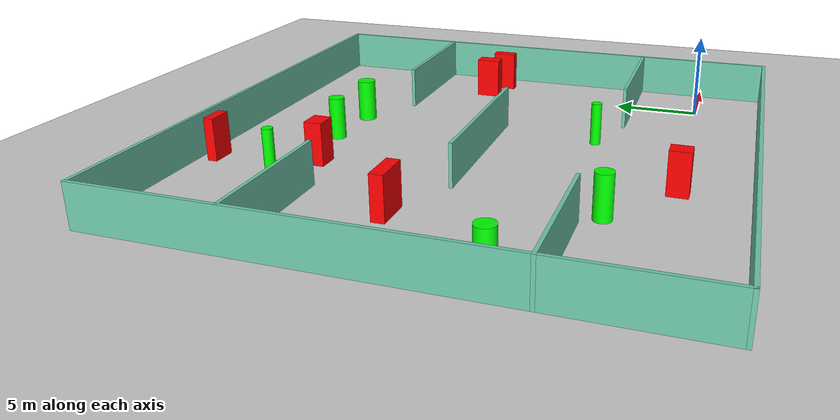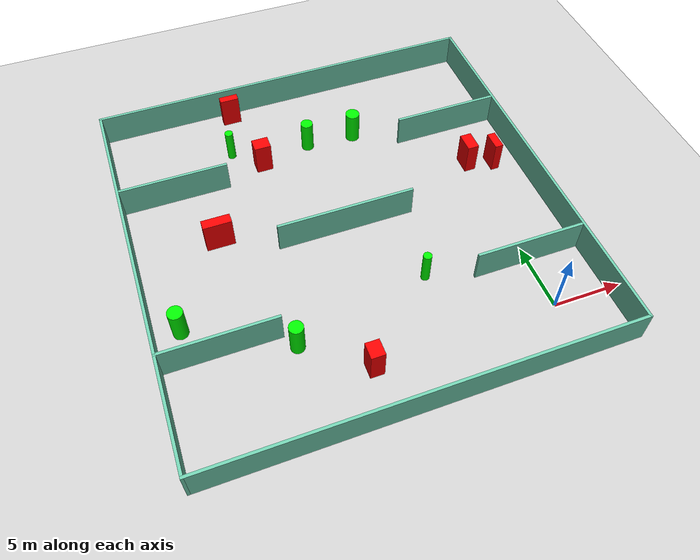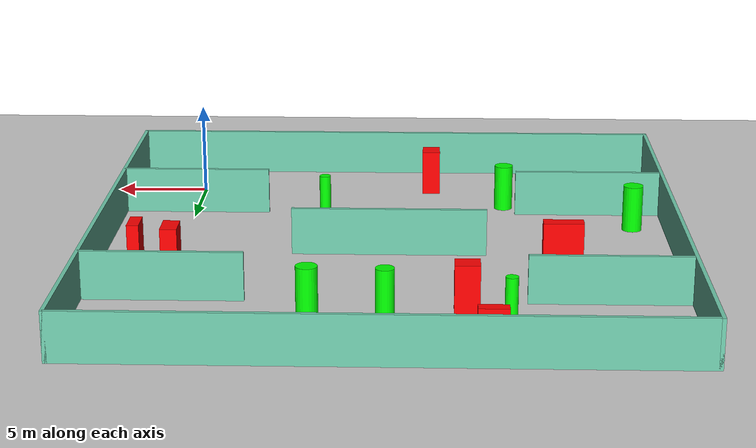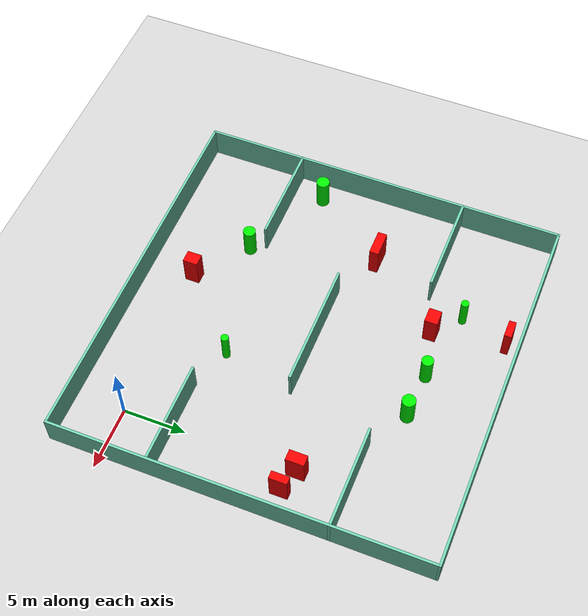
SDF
<sdf version="1.7">
 <world name="default">
  <light name="sun" type="directional">
   <pose>0 0 10 0 -0 0</pose>
   <diffuse>0.8 0.8 0.8 1</diffuse>
   <specular>0.2 0.2 0.2 1</specular>
   <attenuation>
    <range>1000</range>
    <constant>0.9</constant>
    <linear>0.01</linear>
    <quadratic>0.001</quadratic>
   </attenuation>
   <direction>-0.5 0.1 -0.9</direction>
   <spot><inner_angle>0</inner_angle><outer_angle>0</outer_angle><falloff>0</falloff></spot>
  </light>
  <model name="ground_plane">
   <static>1</static>
   <link name="link">
    <collision name="collision">
     <geometry><plane><normal>0 0 1</normal><size>100 100</size></plane></geometry>
     <surface>
      <contact><collide_bitmask>65535</collide_bitmask></contact>
      <friction><ode><mu>100</mu><mu2>50</mu2></ode></friction>
     </surface>
    </collision>
    <visual name="visual">
     <cast_shadows>0</cast_shadows>
     <geometry><plane><normal>0 0 1</normal><size>100 100</size></plane></geometry>
     <material>
      <script><uri>file://media/materials/scripts/gazebo.material</uri><name>Gazebo/Grey</name></script>
     </material>
    </visual>
   </link>
  </model>
  <gravity>0 0 -9.8</gravity>
  <magnetic_field>6e-06 2.3e-05 -4.2e-05</magnetic_field>
  <atmosphere type="adiabatic"/>
  <physics type="ode">
   <max_step_size>0.001</max_step_size>
   <real_time_factor>1</real_time_factor>
   <real_time_update_rate>1000</real_time_update_rate>
  </physics>
  <scene><ambient>0.4 0.4 0.4 1</ambient><background>0.7 0.7 0.7 1</background><shadows>1</shadows></scene>
  <spherical_coordinates>
   <surface_model>EARTH_WGS84</surface_model>
   <latitude_deg>0</latitude_deg>
   <longitude_deg>0</longitude_deg>
   <elevation>0</elevation>
   <heading_deg>0</heading_deg>
  </spherical_coordinates>
  <model name="my_base_walls">
   <link name="Wall_10">
    <collision name="Wall_10_Collision">
     <geometry><box><size>8.2 0.2 2.5</size></box></geometry>
     <pose>0 0 1.25 0 -0 0</pose>
    </collision>
    <visual name="Wall_10_Visual">
     <pose>0 0 1.25 0 -0 0</pose>
     <geometry><box><size>8.2 0.2 2.5</size></box></geometry>
     <material>
      <script><uri>file://media/materials/scripts/gazebo.material</uri><name>Gazebo/Grey</name></script>
      <ambient>0.435294 0.796078 0.67451 1</ambient>
     </material>
     <meta><layer>0</layer></meta>
    </visual>
    <pose>-11 -7 0 0 -0 0</pose>
   </link>
   <link name="Wall_12">
    <collision name="Wall_12_Collision">
     <geometry><box><size>8.2 0.2 2.5</size></box></geometry>
     <pose>0 0 1.25 0 -0 0</pose>
    </collision>
    <visual name="Wall_12_Visual">
     <pose>0 0 1.25 0 -0 0</pose>
     <geometry><box><size>8.2 0.2 2.5</size></box></geometry>
     <material>
      <script><uri>file://media/materials/scripts/gazebo.material</uri><name>Gazebo/Grey</name></script>
      <ambient>0.435294 0.796078 0.67451 1</ambient>
     </material>
     <meta><layer>0</layer></meta>
    </visual>
    <pose>-11 7 0 0 -0 0</pose>
   </link>
   <link name="Wall_14">
    <collision name="Wall_14_Collision">
     <geometry><box><size>8.2 0.2 2.5</size></box></geometry>
     <pose>0 0 1.25 0 -0 0</pose>
    </collision>
    <visual name="Wall_14_Visual">
     <pose>0 0 1.25 0 -0 0</pose>
     <geometry><box><size>8.2 0.2 2.5</size></box></geometry>
     <material>
      <script><uri>file://media/materials/scripts/gazebo.material</uri><name>Gazebo/Grey</name></script>
      <ambient>0.435294 0.796078 0.67451 1</ambient>
     </material>
     <meta><layer>0</layer></meta>
    </visual>
    <pose>11 7 0 0 -0 3.14159</pose>
   </link>
   <link name="Wall_16">
    <collision name="Wall_16_Collision">
     <geometry><box><size>10.2 0.2 2.5</size></box></geometry>
     <pose>0 0 1.25 0 -0 0</pose>
    </collision>
    <visual name="Wall_16_Visual">
     <pose>0 0 1.25 0 -0 0</pose>
     <geometry><box><size>10.2 0.2 2.5</size></box></geometry>
     <material>
      <script><uri>file://media/materials/scripts/gazebo.material</uri><name>Gazebo/Grey</name></script>
      <ambient>0.435294 0.796078 0.67451 1</ambient>
     </material>
     <meta><layer>0</layer></meta>
    </visual>
    <pose>0 0 0 0 -0 3.14159</pose>
   </link>
   <link name="Wall_2">
    <collision name="Wall_2_Collision">
     <geometry><box><size>30.2 0.2 2.5</size></box></geometry>
     <pose>0 0 1.25 0 -0 0</pose>
    </collision>
    <visual name="Wall_2_Visual">
     <pose>0 0 1.25 0 -0 0</pose>
     <geometry><box><size>30.2 0.2 2.5</size></box></geometry>
     <material>
      <script><uri>file://media/materials/scripts/gazebo.material</uri><name>Gazebo/Grey</name></script>
      <ambient>0.435294 0.796078 0.67451 1</ambient>
     </material>
     <meta><layer>0</layer></meta>
    </visual>
    <pose>0 -15 0 0 -0 3.14159</pose>
   </link>
   <link name="Wall_3">
    <collision name="Wall_3_Collision">
     <geometry><box><size>30.2 0.2 2.5</size></box></geometry>
     <pose>0 0 1.25 0 -0 0</pose>
    </collision>
    <visual name="Wall_3_Visual">
     <pose>0 0 1.25 0 -0 0</pose>
     <geometry><box><size>30.2 0.2 2.5</size></box></geometry>
     <material>
      <script><uri>file://media/materials/scripts/gazebo.material</uri><name>Gazebo/Grey</name></script>
      <ambient>0.435294 0.796078 0.67451 1</ambient>
     </material>
     <meta><layer>0</layer></meta>
    </visual>
    <pose>-15 0 0 0 -0 1.5708</pose>
   </link>
   <link name="Wall_4">
    <collision name="Wall_4_Collision">
     <geometry><box><size>30.2 0.2 2.5</size></box></geometry>
     <pose>0 0 1.25 0 -0 0</pose>
    </collision>
    <visual name="Wall_4_Visual">
     <pose>0 0 1.25 0 -0 0</pose>
     <geometry><box><size>30.2 0.2 2.5</size></box></geometry>
     <material>
      <script><uri>file://media/materials/scripts/gazebo.material</uri><name>Gazebo/Grey</name></script>
      <ambient>0.435294 0.796078 0.67451 1</ambient>
     </material>
     <meta><layer>0</layer></meta>
    </visual>
    <pose>0 15 0 0 -0 0</pose>
   </link>
   <link name="Wall_6">
    <collision name="Wall_6_Collision">
     <geometry><box><size>30.2 0.2 2.5</size></box></geometry>
     <pose>0 0 1.25 0 -0 0</pose>
    </collision>
    <visual name="Wall_6_Visual">
     <pose>0 0 1.25 0 -0 0</pose>
     <geometry><box><size>30.2 0.2 2.5</size></box></geometry>
     <material>
      <script><uri>file://media/materials/scripts/gazebo.material</uri><name>Gazebo/Grey</name></script>
      <ambient>0.435294 0.796078 0.67451 1</ambient>
     </material>
     <meta><layer>0</layer></meta>
    </visual>
    <pose>15 0 0 0 -0 1.5708</pose>
   </link>
   <link name="Wall_8">
    <collision name="Wall_8_Collision">
     <geometry><box><size>8.2 0.2 2.5</size></box></geometry>
     <pose>0 0 1.25 0 -0 0</pose>
    </collision>
    <visual name="Wall_8_Visual">
     <pose>0 0 1.25 0 -0 0</pose>
     <geometry><box><size>8.2 0.2 2.5</size></box></geometry>
     <material>
      <script><uri>file://media/materials/scripts/gazebo.material</uri><name>Gazebo/Grey</name></script>
      <ambient>0.435294 0.796078 0.67451 1</ambient>
     </material>
     <meta><layer>0</layer></meta>
    </visual>
    <pose>11 -7 0 0 -0 3.14159</pose>
   </link>
   <static>1</static>
   <pose>-11 11 0 0 -0 0</pose>
  </model>
  <model name="cylinder1">
   <static>1</static>
   <link name="link">
    <inertial>
     <mass>1</mass>
     <inertia><ixx>0.5</ixx><ixy>0</ixy><ixz>0</ixz><iyy>0.5</iyy><iyz>0</iyz><izz>1</izz></inertia>
    </inertial>
    <collision name="collision">
     <geometry><cylinder><radius>0.3130223602381498</radius><length>2.5</length></cylinder></geometry>
    </collision>
    <visual name="visual">
     <geometry><cylinder><radius>0.3130223602381498</radius><length>2.5</length></cylinder></geometry>
     <material>
      <ambient>0 1 0 1</ambient>
      <diffuse>0 1 0 1</diffuse>
      <specular>0.1 0.1 0.1 1</specular>
      <emissive>0 0 0 0</emissive>
     </material>
    </visual>
   </link>
   <pose>-16.970026659079544 21.07719384940127 1.25 0 0 0</pose>
  </model>
  <model name="cylinder2">
   <static>1</static>
   <link name="link">
    <inertial>
     <mass>1</mass>
     <inertia><ixx>0.5</ixx><ixy>0</ixy><ixz>0</ixz><iyy>0.5</iyy><iyz>0</iyz><izz>1</izz></inertia>
    </inertial>
    <collision name="collision">
     <geometry><cylinder><radius>0.5343369065440069</radius><length>2.5</length></cylinder></geometry>
    </collision>
    <visual name="visual">
     <geometry><cylinder><radius>0.5343369065440069</radius><length>2.5</length></cylinder></geometry>
     <material>
      <ambient>0 1 0 1</ambient>
      <diffuse>0 1 0 1</diffuse>
      <specular>0.1 0.1 0.1 1</specular>
      <emissive>0 0 0 0</emissive>
     </material>
    </visual>
   </link>
   <pose>-24.184651291442687 6.522121419927725 1.25 0 0 0</pose>
  </model>
  <model name="cylinder3">
   <static>1</static>
   <link name="link">
    <inertial>
     <mass>1</mass>
     <inertia><ixx>0.5</ixx><ixy>0</ixy><ixz>0</ixz><iyy>0.5</iyy><iyz>0</iyz><izz>1</izz></inertia>
    </inertial>
    <collision name="collision">
     <geometry><cylinder><radius>0.5390522603406103</radius><length>2.5</length></cylinder></geometry>
    </collision>
    <visual name="visual">
     <geometry><cylinder><radius>0.5390522603406103</radius><length>2.5</length></cylinder></geometry>
     <material>
      <ambient>0 1 0 1</ambient>
      <diffuse>0 1 0 1</diffuse>
      <specular>0.1 0.1 0.1 1</specular>
      <emissive>0 0 0 0</emissive>
     </material>
    </visual>
   </link>
   <pose>-7.283743331154886 19.866603331752053 1.25 0 0 0</pose>
  </model>
  <model name="cylinder4">
   <static>1</static>
   <link name="link">
    <inertial>
     <mass>1</mass>
     <inertia><ixx>0.5</ixx><ixy>0</ixy><ixz>0</ixz><iyy>0.5</iyy><iyz>0</iyz><izz>1</izz></inertia>
    </inertial>
    <collision name="collision">
     <geometry><cylinder><radius>0.46628028388489656</radius><length>2.5</length></cylinder></geometry>
    </collision>
    <visual name="visual">
     <geometry><cylinder><radius>0.46628028388489656</radius><length>2.5</length></cylinder></geometry>
     <material>
      <ambient>0 1 0 1</ambient>
      <diffuse>0 1 0 1</diffuse>
      <specular>0.1 0.1 0.1 1</specular>
      <emissive>0 0 0 0</emissive>
     </material>
    </visual>
   </link>
   <pose>-11.015591600460137 20.046872821524673 1.25 0 0 0</pose>
  </model>
  <model name="cylinder5">
   <static>1</static>
   <link name="link">
    <inertial>
     <mass>1</mass>
     <inertia><ixx>0.5</ixx><ixy>0</ixy><ixz>0</ixz><iyy>0.5</iyy><iyz>0</iyz><izz>1</izz></inertia>
    </inertial>
    <collision name="collision">
     <geometry><cylinder><radius>0.3073208591974457</radius><length>2.5</length></cylinder></geometry>
    </collision>
    <visual name="visual">
     <geometry><cylinder><radius>0.3073208591974457</radius><length>2.5</length></cylinder></geometry>
     <material>
      <ambient>0 1 0 1</ambient>
      <diffuse>0 1 0 1</diffuse>
      <specular>0.1 0.1 0.1 1</specular>
      <emissive>0 0 0 0</emissive>
     </material>
    </visual>
   </link>
   <pose>-7.328245059647198 5.136269788848615 1.25 0 0 0</pose>
  </model>
  <model name="cylinder6">
   <static>1</static>
   <link name="link">
    <inertial>
     <mass>1</mass>
     <inertia><ixx>0.5</ixx><ixy>0</ixy><ixz>0</ixz><iyy>0.5</iyy><iyz>0</iyz><izz>1</izz></inertia>
    </inertial>
    <collision name="collision">
     <geometry><cylinder><radius>0.5017112718146475</radius><length>2.5</length></cylinder></geometry>
    </collision>
    <visual name="visual">
     <geometry><cylinder><radius>0.5017112718146475</radius><length>2.5</length></cylinder></geometry>
     <material>
      <ambient>0 1 0 1</ambient>
      <diffuse>0 1 0 1</diffuse>
      <specular>0.1 0.1 0.1 1</specular>
      <emissive>0 0 0 0</emissive>
     </material>
    </visual>
   </link>
   <pose>-17.288629377738935 2.8822238146554717 1.25 0 0 0</pose>
  </model>
  <model name="box1">
   <static>1</static>
   <link name="link">
    <inertial>
     <mass>1</mass>
     <inertia><ixx>0.083</ixx><ixy>0</ixy><ixz>0</ixz><iyy>0.083</iyy><iyz>0</iyz><izz>0.083</izz></inertia>
    </inertial>
    <collision name="collision">
     <geometry><box><size>0.8640769844491196 1.4573377128731821 2.5</size></box></geometry>
    </collision>
    <visual name="visual">
     <geometry><box><size>0.8640769844491196 1.4573377128731821 2.5</size></box></geometry>
     <material>
      <ambient>1 0 0 1</ambient>
      <diffuse>1 0 0 1</diffuse>
      <specular>0.1 0.1 0.1 1</specular>
      <emissive>0 0 0 0</emissive>
     </material>
    </visual>
    <sensor name="my_contact" type="contact">
     <contact><collision>box_collision</collision><topic>__default_topic__</topic></contact>
    </sensor>
   </link>
   <pose>0.048324254198792715 13.97356170559474 1.25 0 0 0</pose>
  </model>
  <model name="box2">
   <static>1</static>
   <link name="link">
    <inertial>
     <mass>1</mass>
     <inertia><ixx>0.083</ixx><ixy>0</ixy><ixz>0</ixz><iyy>0.083</iyy><iyz>0</iyz><izz>0.083</izz></inertia>
    </inertial>
    <collision name="collision">
     <geometry><box><size>2.073682027086141 0.7450570254053499 2.5</size></box></geometry>
    </collision>
    <visual name="visual">
     <geometry><box><size>2.073682027086141 0.7450570254053499 2.5</size></box></geometry>
     <material>
      <ambient>1 0 0 1</ambient>
      <diffuse>1 0 0 1</diffuse>
      <specular>0.1 0.1 0.1 1</specular>
      <emissive>0 0 0 0</emissive>
     </material>
    </visual>
    <sensor name="my_contact" type="contact">
     <contact><collision>box_collision</collision><topic>__default_topic__</topic></contact>
    </sensor>
   </link>
   <pose>-19.949374948020555 12.882599914808436 1.25 0 0 0</pose>
  </model>
  <model name="box3">
   <static>1</static>
   <link name="link">
    <inertial>
     <mass>1</mass>
     <inertia><ixx>0.083</ixx><ixy>0</ixy><ixz>0</ixz><iyy>0.083</iyy><iyz>0</iyz><izz>0.083</izz></inertia>
    </inertial>
    <collision name="collision">
     <geometry><box><size>0.9878803999785846 1.1747586390375147 2.5</size></box></geometry>
    </collision>
    <visual name="visual">
     <geometry><box><size>0.9878803999785846 1.1747586390375147 2.5</size></box></geometry>
     <material>
      <ambient>1 0 0 1</ambient>
      <diffuse>1 0 0 1</diffuse>
      <specular>0.1 0.1 0.1 1</specular>
      <emissive>0 0 0 0</emissive>
     </material>
    </visual>
    <sensor name="my_contact" type="contact">
     <contact><collision>box_collision</collision><topic>__default_topic__</topic></contact>
    </sensor>
   </link>
   <pose>-13.201573560702112 -0.24823349359193436 1.25 0 0 0</pose>
  </model>
  <model name="box4">
   <static>1</static>
   <link name="link">
    <inertial>
     <mass>1</mass>
     <inertia><ixx>0.083</ixx><ixy>0</ixy><ixz>0</ixz><iyy>0.083</iyy><iyz>0</iyz><izz>0.083</izz></inertia>
    </inertial>
    <collision name="collision">
     <geometry><box><size>1.4351815687482836 0.5774420997465362 2.5</size></box></geometry>
    </collision>
    <visual name="visual">
     <geometry><box><size>1.4351815687482836 0.5774420997465362 2.5</size></box></geometry>
     <material>
      <ambient>1 0 0 1</ambient>
      <diffuse>1 0 0 1</diffuse>
      <specular>0.1 0.1 0.1 1</specular>
      <emissive>0 0 0 0</emissive>
     </material>
    </visual>
    <sensor name="my_contact" type="contact">
     <contact><collision>box_collision</collision><topic>__default_topic__</topic></contact>
    </sensor>
   </link>
   <pose>-15.98941749526934 24.96824354230227 1.25 0 0 0</pose>
  </model>
  <model name="box5">
   <static>1</static>
   <link name="link">
    <inertial>
     <mass>1</mass>
     <inertia><ixx>0.083</ixx><ixy>0</ixy><ixz>0</ixz><iyy>0.083</iyy><iyz>0</iyz><izz>0.083</izz></inertia>
    </inertial>
    <collision name="collision">
     <geometry><box><size>0.6247869716154255 1.4231288526998285 2.5</size></box></geometry>
    </collision>
    <visual name="visual">
     <geometry><box><size>0.6247869716154255 1.4231288526998285 2.5</size></box></geometry>
     <material>
      <ambient>1 0 0 1</ambient>
      <diffuse>1 0 0 1</diffuse>
      <specular>0.1 0.1 0.1 1</specular>
      <emissive>0 0 0 0</emissive>
     </material>
    </visual>
    <sensor name="my_contact" type="contact">
     <contact><collision>box_collision</collision><topic>__default_topic__</topic></contact>
    </sensor>
   </link>
   <pose>1.9424749487128743 13.41348955478292 1.25 0 0 0</pose>
  </model>
  <model name="box6">
   <static>1</static>
   <link name="link">
    <inertial>
     <mass>1</mass>
     <inertia><ixx>0.083</ixx><ixy>0</ixy><ixz>0</ixz><iyy>0.083</iyy><iyz>0</iyz><izz>0.083</izz></inertia>
    </inertial>
    <collision name="collision">
     <geometry><box><size>1.2452633299961722 1.0288307766125735 2.5</size></box></geometry>
    </collision>
    <visual name="visual">
     <geometry><box><size>1.2452633299961722 1.0288307766125735 2.5</size></box></geometry>
     <material>
      <ambient>1 0 0 1</ambient>
      <diffuse>1 0 0 1</diffuse>
      <specular>0.1 0.1 0.1 1</specular>
      <emissive>0 0 0 0</emissive>
     </material>
    </visual>
    <sensor name="my_contact" type="contact">
     <contact><collision>box_collision</collision><topic>__default_topic__</topic></contact>
    </sensor>
   </link>
   <pose>-14.93597918650369 19.16747855507695 1.25 0 0 0</pose>
  </model>
 </world>
</sdf>
